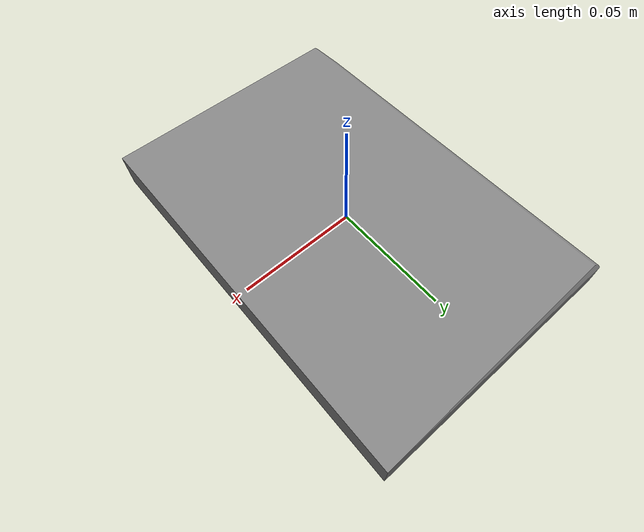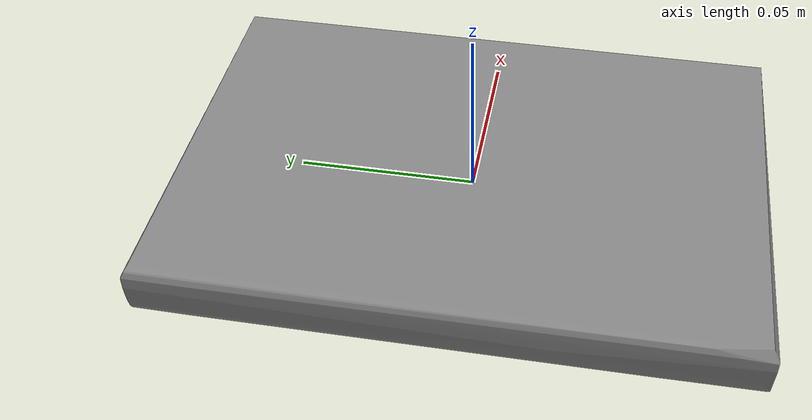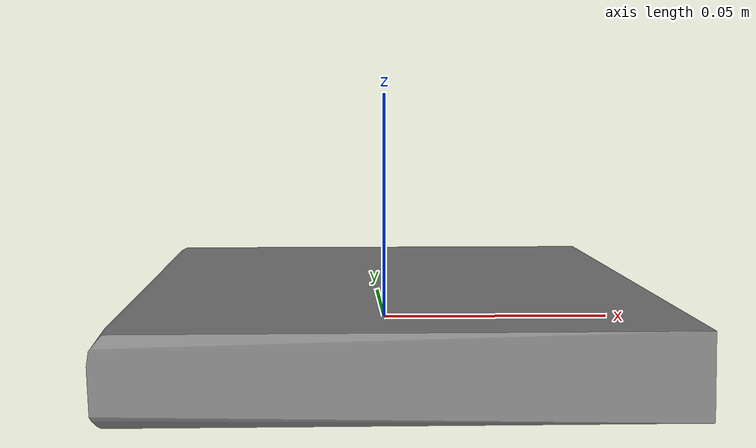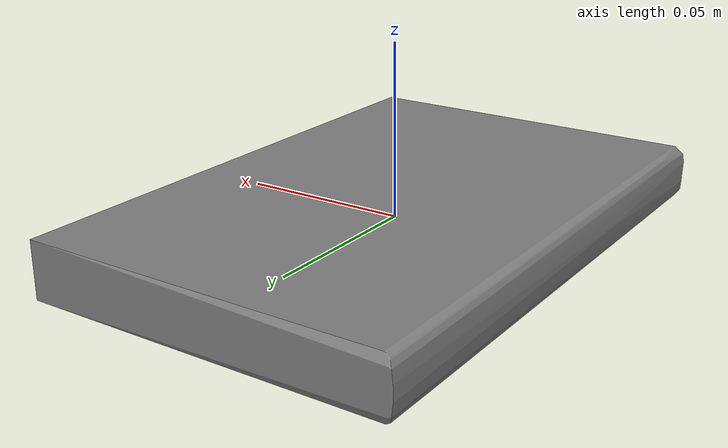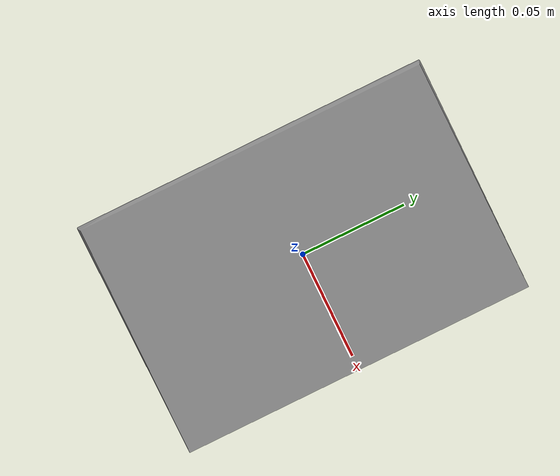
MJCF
<mujoco model="book_frl_apartment_book_03_M">
  <default>
    <default class="visual">
      <geom group="2" type="mesh" contype="0" conaffinity="0" />
    </default>
    <default class="collision">
      <geom group="3" type="mesh" />
    </default>
  </default>
  <asset>
    <mesh file="book_frl_apartment_book_03_M.stl" />
    <mesh file="book_frl_apartment_book_03_M_collision_0.stl" />
  </asset>
  <worldbody>
    <body name="book_frl_apartment_book_03_M">
      <geom mesh="book_frl_apartment_book_03_M" class="visual" />
      <geom mesh="book_frl_apartment_book_03_M_collision_0" class="collision" />
    </body>
  </worldbody>
</mujoco>
